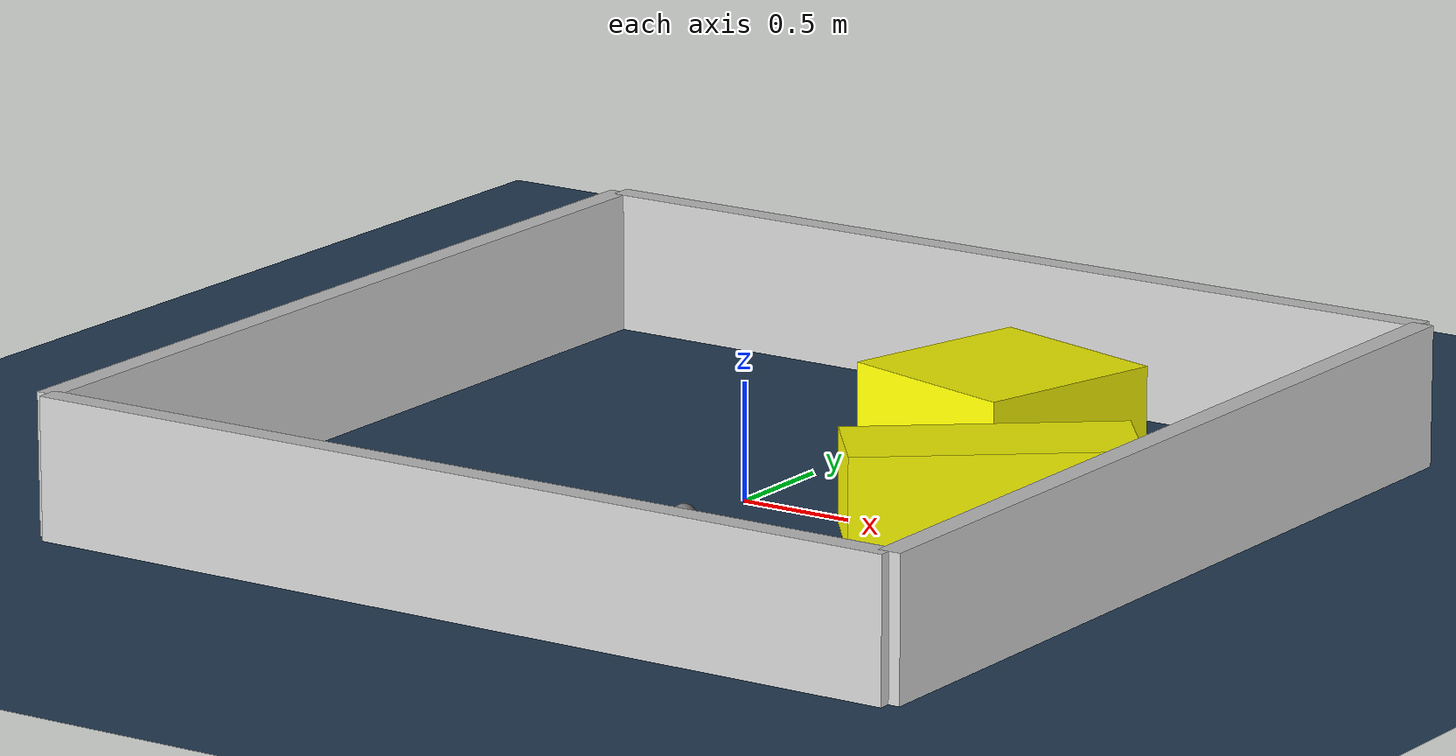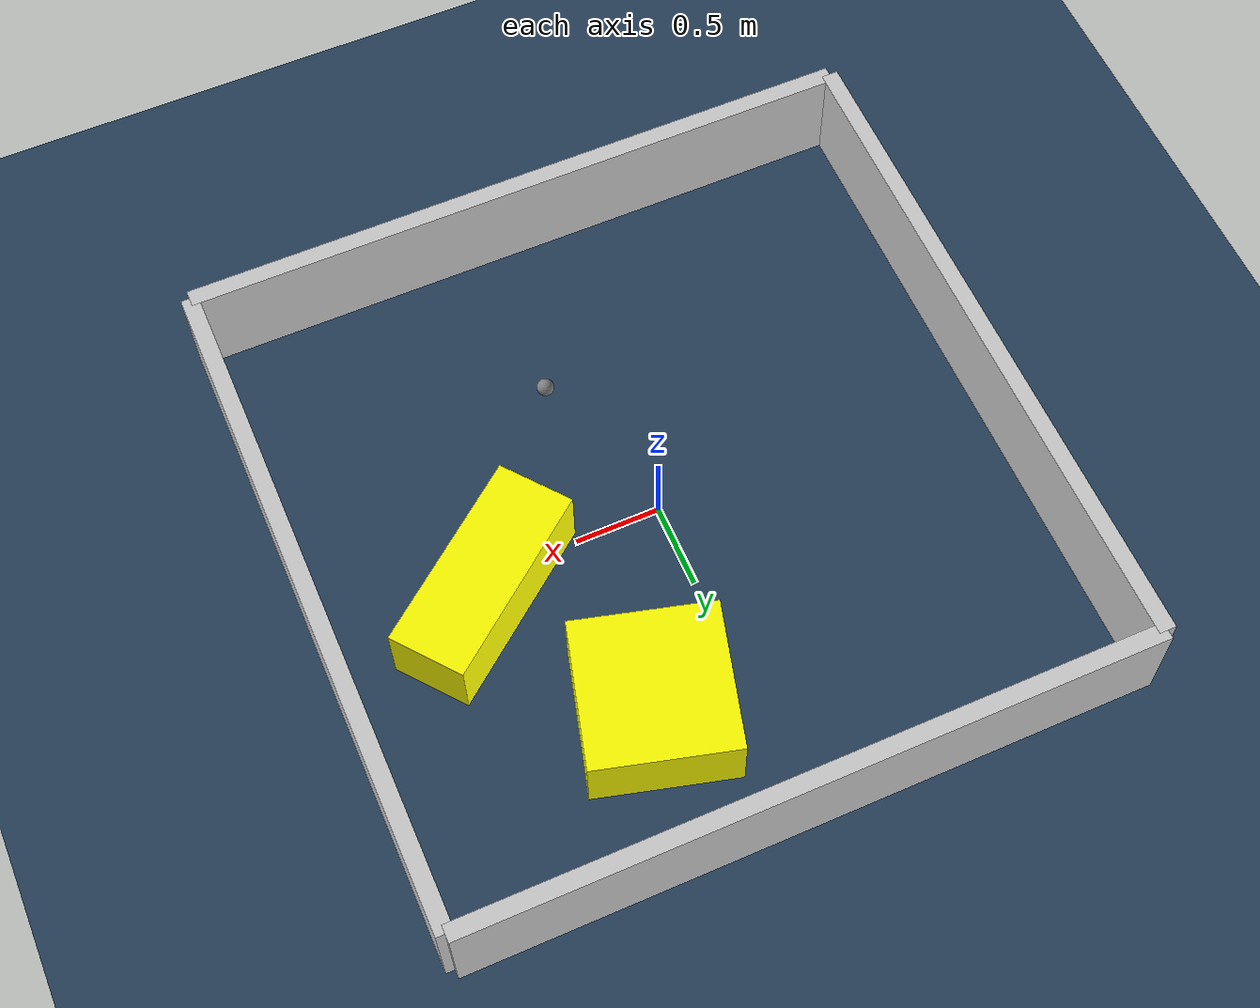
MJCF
<?xml version="1.0" ?>
<mujoco model="generated_environment">
  <option timestep="0.01" integrator="RK4" cone="elliptic"/>
  <default>
    <geom density="1"/>
  </default>
  <asset>
    <texture builtin="gradient" height="3072" rgb1="0.3 0.5 0.7" rgb2="0 0 0" type="skybox" width="512"/>
    <texture builtin="checker" height="300" mark="edge" markrgb="0.8 0.8 0.8" name="groundplane" rgb1="0.2 0.3 0.4" rgb2="0.1 0.2 0.3" type="2d" width="300"/>
    <material name="groundplane" reflectance="0.2" texrepeat="5 5" texture="groundplane" texuniform="true"/>
    <material name="robot" rgba="0.0 1.0 0.0 1"/>
  </asset>
  <worldbody>
    <light dir="0 0 -1" directional="true" pos="0 0 1.5"/>
    <geom condim="4" friction="1.0 0.005 0.001" material="groundplane" name="floor" size="0 0 0.05" type="plane"/>
    <body name="walls">
      <geom name="wall_1" condim="4" pos="-2.0 0.0 0.3" rgba="0.800000011920929 0.800000011920929 0.800000011920929 1.0" size="0.05 2.0 0.3" type="box"/>
      <geom name="wall_2" condim="4" pos="2.0 0.0 0.3" rgba="0.800000011920929 0.800000011920929 0.800000011920929 1.0" size="0.05 2.0 0.3" type="box"/>
      <geom name="wall_3" condim="4" pos="0.0 -2.0 0.3" rgba="0.800000011920929 0.800000011920929 0.800000011920929 1.0" size="2.0 0.05 0.3" type="box"/>
      <geom name="wall_4" condim="4" pos="0.0 2.0 0.3" rgba="0.800000011920929 0.800000011920929 0.800000011920929 1.0" size="2.0 0.05 0.3" type="box"/>
    </body>
    <body name="robot">
      <joint name="joint_x" type="slide" pos="0 0 0" axis="1 0 0"/>
      <joint name="joint_y" type="slide" pos="0 0 0" axis="0 1 0"/>
      <geom name="robot" type="sphere" pos="0.3117685095229312 -0.8890015475052574 0.2" size="0.05" mass="5." friction="1.0 0.005 0.0001" condim="4"/>
      <site name="sensor_ball"/>
    </body>
    <body name="obstacle_1_movable">
      <geom name="obstacle_1_movable" condim="4" pos="1.090202240968542 0.1364304067626423 0.2" euler="0 0 218.3733789725259" friction="1.0 0.005 0.001" rgba="1 1 0 1" size="0.589931579756729 0.22895140657639193 0.2" type="box" mass="0.1"/>
      <joint type="free"/>
    </body>
    <body name="obstacle_2_movable">
      <geom name="obstacle_2_movable" condim="4" pos="0.5152999911352585 1.1291411200981547 0.2" euler="0 0 344.91264487643116" friction="1.0 0.005 0.001" rgba="1 1 0 1" size="0.41529936534261613 0.427810715023741 0.2" type="box" mass="0.1"/>
      <joint type="free"/>
    </body>
  </worldbody>
  <actuator>
    <motor name="actuator_x" joint="joint_x" gear="1" ctrlrange="-1 1"/>
    <motor name="actuator_y" joint="joint_y" gear="1" ctrlrange="-1 1"/>
  </actuator>
</mujoco>
